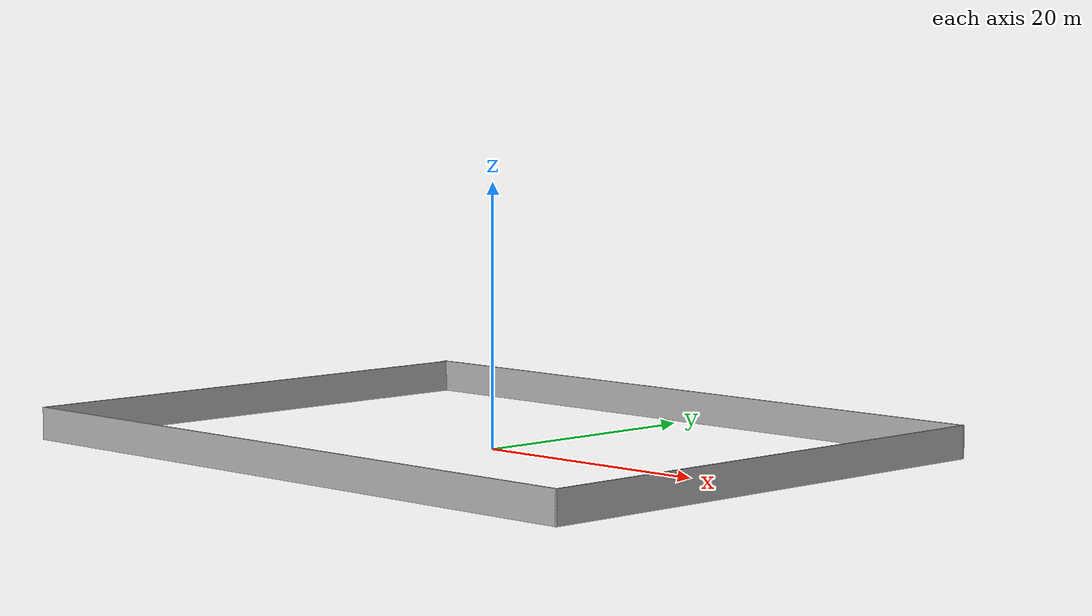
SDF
<?xml version="1.0"?>
<sdf version="1.8">
  <model name="orchard_walls">
    <static>true</static>
    <link name="Wall_12">
      <pose>-27.425 -0.125 0 0 0 -1.5708</pose>
      <collision name="c"><pose>0 0 1.25 0 0 0</pose>
        <geometry><box><size>42.25 0.15 2.5</size></box></geometry></collision>
      <visual name="v"><pose>0 0 1.25 0 0 0</pose>
        <geometry><box><size>42.25 0.15 2.5</size></box></geometry>
        <material><ambient>0.55 0.55 0.55 1</ambient><diffuse>0.7 0.7 0.7 1</diffuse></material>
      </visual>
    </link>
    <link name="Wall_13">
      <pose>0.124999 -21.175 0 0 0 0</pose>
      <collision name="c"><pose>0 0 1.25 0 0 0</pose>
        <geometry><box><size>55.25 0.15 2.5</size></box></geometry></collision>
      <visual name="v"><pose>0 0 1.25 0 0 0</pose>
        <geometry><box><size>55.25 0.15 2.5</size></box></geometry>
        <material><ambient>0.55 0.55 0.55 1</ambient><diffuse>0.7 0.7 0.7 1</diffuse></material>
      </visual>
    </link>
    <link name="Wall_14">
      <pose>27.675 0 0 0 0 1.5708</pose>
      <collision name="c"><pose>0 0 1.25 0 0 0</pose>
        <geometry><box><size>42.5 0.15 2.5</size></box></geometry></collision>
      <visual name="v"><pose>0 0 1.25 0 0 0</pose>
        <geometry><box><size>42.5 0.15 2.5</size></box></geometry>
        <material><ambient>0.55 0.55 0.55 1</ambient><diffuse>0.7 0.7 0.7 1</diffuse></material>
      </visual>
    </link>
    <link name="Wall_15">
      <pose>-1e-06 21.175 0 0 0 3.14159</pose>
      <collision name="c"><pose>0 0 1.25 0 0 0</pose>
        <geometry><box><size>55.5 0.15 2.5</size></box></geometry></collision>
      <visual name="v"><pose>0 0 1.25 0 0 0</pose>
        <geometry><box><size>55.5 0.15 2.5</size></box></geometry>
        <material><ambient>0.55 0.55 0.55 1</ambient><diffuse>0.7 0.7 0.7 1</diffuse></material>
      </visual>
    </link>
  </model>
</sdf>
